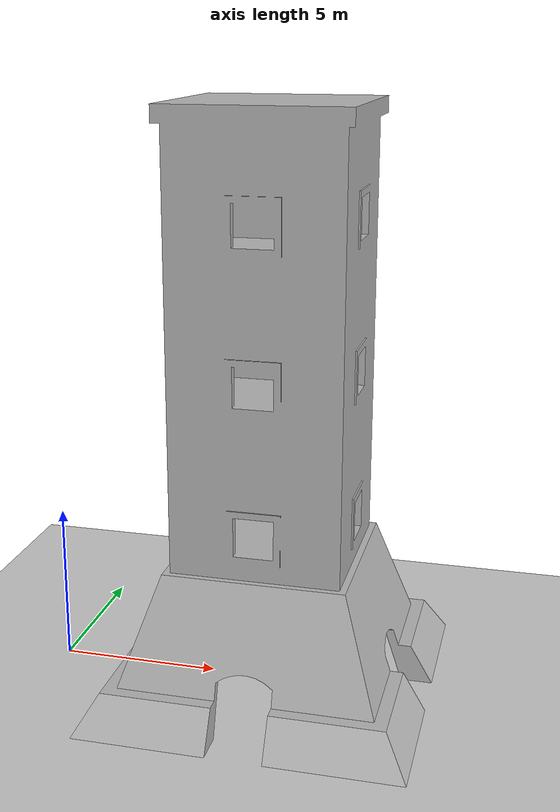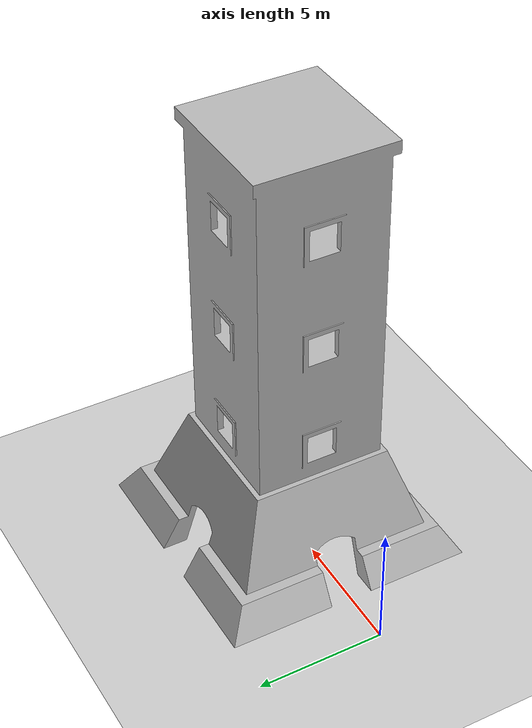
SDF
<sdf version="1.6">
 <world name="default">
  <light name="sun" type="directional">
   <pose>0 0 50 0 -0 0</pose>
   <diffuse>0.8 0.8 0.8 1</diffuse>
   <specular>0.2 0.2 0.2 1</specular>
   <attenuation>
    <range>1000</range>
    <constant>0.9</constant>
    <linear>0.01</linear>
    <quadratic>0.001</quadratic>
   </attenuation>
   <direction>-0.5 0.1 -0.9</direction>
  </light>
  <plugin name="ros_interface_plugin" filename="librotors_gazebo_ros_interface_plugin.so"/>
  <spherical_coordinates>
   <surface_model>EARTH_WGS84</surface_model>
   <latitude_deg>47.3667</latitude_deg>
   <longitude_deg>8.55</longitude_deg>
   <elevation>500</elevation>
   <heading_deg>0</heading_deg>
  </spherical_coordinates>
  <physics name="default_physics" default="0" type="ode">
   <ode>
    <solver>
     <type>quick</type>
     <iters>1000</iters>
     <sor>1.3</sor>
     <use_dynamic_moi_rescaling>0</use_dynamic_moi_rescaling>
    </solver>
    <constraints>
     <cfm>0</cfm>
     <erp>0.2</erp>
     <contact_max_correcting_vel>100</contact_max_correcting_vel>
     <contact_surface_layer>0.001</contact_surface_layer>
    </constraints>
   </ode>
   <max_step_size>0.01</max_step_size>
   <real_time_factor>1</real_time_factor>
   <real_time_update_rate>100</real_time_update_rate>
  </physics>
  <gravity>0 0 -9.8</gravity>
  <magnetic_field>6e-06 2.3e-05 -4.2e-05</magnetic_field>
  <atmosphere type="adiabatic"/>
  <scene><ambient>0 0 0 1</ambient><background>0.7 0.7 0.7 1</background><shadows>1</shadows></scene>
  <audio><device>default</device></audio>
  <model name="ground_concrete">
   <static>1</static>
   <link name="link">
    <collision name="collision">
     <geometry><plane><normal>0 0 1</normal><size>100 100</size></plane></geometry>
     <surface><friction><ode><mu>100</mu><mu2>50</mu2></ode></friction></surface>
    </collision>
    <visual name="visual">
     <cast_shadows>0</cast_shadows>
     <geometry><plane><normal>0 0 1</normal><size>100 100</size></plane></geometry>
     <material>
      <script>
       <uri>model://ground_concrete/materials/scripts</uri>
       <uri>model://ground_concrete/materials/textures/</uri>
       <name>MyGroundTower/Image</name>
      </script>
     </material>
    </visual>
   </link>
   <pose>0 1 0 0 0 0</pose>
  </model>
  <model name="Tower">
   <static>1</static>
   <pose>7.0 0 0 0 0 0</pose>
   <link name="link">
    <collision name="collision">
     <geometry><mesh><uri>model://Tower/meshes/tower_3.dae</uri></mesh></geometry>
    </collision>
    <visual name="visual"><geometry><mesh><uri>model://Tower/meshes/tower_3.dae</uri></mesh></geometry></visual>
    <inertial>
     <inertia><ixx>1</ixx><ixy>0</ixy><ixz>0</ixz><iyy>1</iyy><iyz>0</iyz><izz>1</izz></inertia>
     <mass>1</mass>
    </inertial>
   </link>
  </model>
  <light name="user_spot_light_0" type="spot">
   <pose>7.0 0 0 0 0 0</pose>
   <diffuse>0.5 0.5 0.5 1</diffuse>
   <specular>0.1 0.1 0.1 1</specular>
   <direction>0 0 -1</direction>
   <attenuation>
    <range>20</range>
    <constant>0.5</constant>
    <linear>0.01</linear>
    <quadratic>0.001</quadratic>
   </attenuation>
   <cast_shadows>0</cast_shadows>
   <spot><inner_angle>0.6</inner_angle><outer_angle>1</outer_angle><falloff>1</falloff></spot>
  </light>
  <light name="user_spot_light_5" type="spot">
   <pose>20 0 1 0 -0 0</pose>
   <diffuse>0.5 0.5 0.5 1</diffuse>
   <specular>0.1 0.1 0.1 1</specular>
   <direction>0 0 -1</direction>
   <attenuation>
    <range>20</range>
    <constant>0.5</constant>
    <linear>0.01</linear>
    <quadratic>0.001</quadratic>
   </attenuation>
   <cast_shadows>0</cast_shadows>
   <spot><inner_angle>0.6</inner_angle><outer_angle>1</outer_angle><falloff>1</falloff></spot>
  </light>
  <light name="user_spot_light_6" type="spot">
   <pose>3.7 16 1 0 0 0</pose>
   <diffuse>0.5 0.5 0.5 1</diffuse>
   <specular>0.1 0.1 0.1 1</specular>
   <direction>0 0 -1</direction>
   <attenuation>
    <range>20</range>
    <constant>0.5</constant>
    <linear>0.01</linear>
    <quadratic>0.001</quadratic>
   </attenuation>
   <cast_shadows>0</cast_shadows>
   <spot><inner_angle>0.6</inner_angle><outer_angle>1</outer_angle><falloff>1</falloff></spot>
  </light>
  <light name="user_spot_light_7" type="spot">
   <pose>22 -1 1 0 0 0</pose>
   <diffuse>0.5 0.5 0.5 1</diffuse>
   <specular>0.1 0.1 0.1 1</specular>
   <direction>0 0 -1</direction>
   <attenuation>
    <range>20</range>
    <constant>0.5</constant>
    <linear>0.01</linear>
    <quadratic>0.001</quadratic>
   </attenuation>
   <cast_shadows>0</cast_shadows>
   <spot><inner_angle>0.6</inner_angle><outer_angle>1</outer_angle><falloff>1</falloff></spot>
  </light>
 </world>
</sdf>
